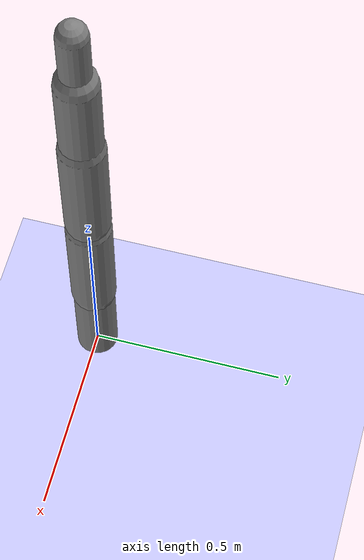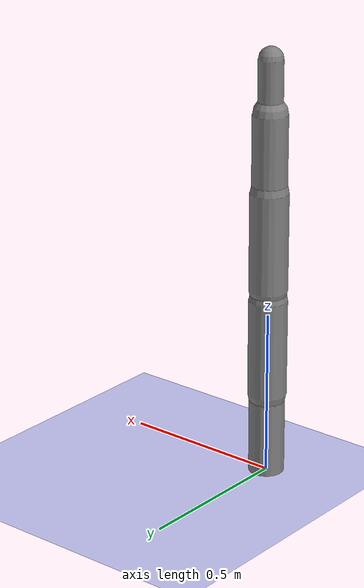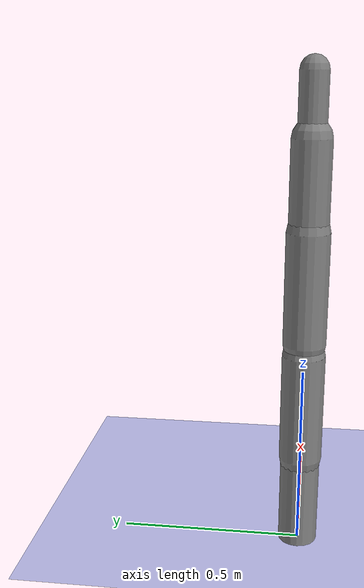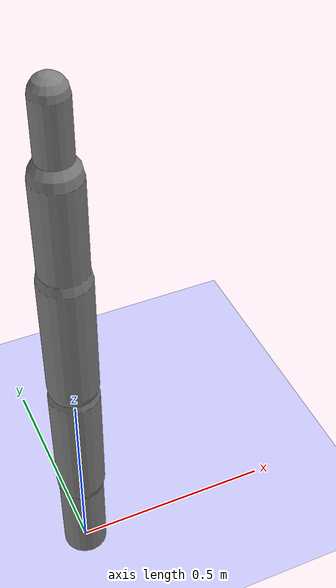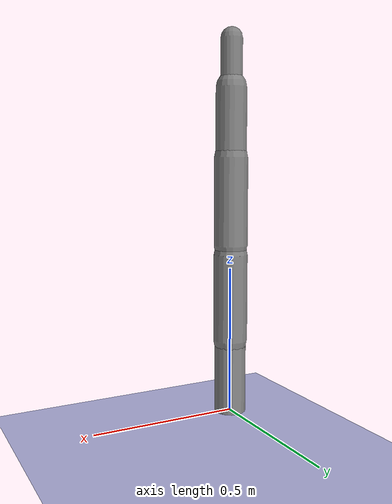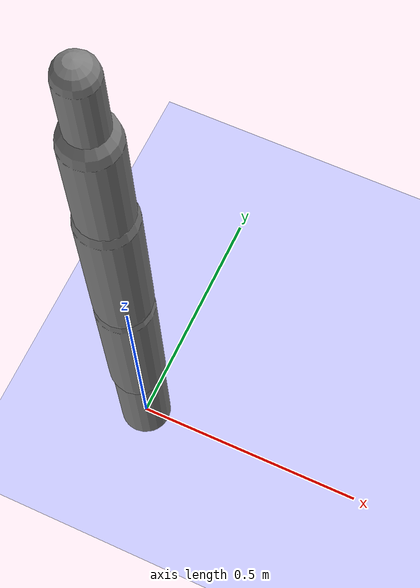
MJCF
<?xml version='1.0' encoding='UTF-8'?>
<mujoco model="robot_model">
  <worldbody>
    <light name="light" pos="0 -3 10" dir="0 0.5 -1" diffuse=".8 .8 .8" specular="0.1 0.1 0.1"/>
    <geom name="floor" type="plane" size="10.0 10.0 0.1" pos="0 0 0" rgba="0.8 0.8 1 1" contype="2" conaffinity="1"/>
    <body name="limb0" pos="0 0 0">
      <geom type="capsule" fromto="0 0 0 0 0 0.5436466289694539" size="0.05373828533547872" density="692.0592022737762" contype="1" conaffinity="2"/>
      <site type="sphere" size="0.01" name="limb0_site0" pos="0 0 0.25101394798134996"/>
      <site type="sphere" size="0.01" name="limb0_site1" pos="0 0 0.4933357024412991"/>
      <freejoint name="limb0_root"/>
      <body name="limb1" pos="0 0 0.25101394798134996">
        <geom type="capsule" fromto="0 0 0 0 0 0.2999583254750588" size="0.058183619747629485" density="740.1828998792604" contype="1" conaffinity="2"/>
        <site type="sphere" size="0.01" name="limb1_site0" pos="0 0 0.07982799083501751"/>
        <body name="limb2" pos="0 0 0.07982799083501751">
          <geom type="capsule" fromto="0 0 0 0 0 0.42075223148732316" size="0.029294916785572153" density="1138.8241278267756" contype="1" conaffinity="2"/>
          <site type="sphere" size="0.01" name="limb2_site0" pos="0 0 0.08379767948799274"/>
          <body name="limb3" pos="0 0 0.08379767948799274">
            <geom type="capsule" fromto="0 0 0 0 0 0.44725352205808966" size="0.03564490912095247" density="1041.1841761778296" contype="1" conaffinity="2"/>
            <joint name="joint_limb2_limb3_0" type="hinge" axis="0 0 1" range="-20.0 20.0" damping="5.0"/>
          </body>
          <joint name="joint_limb1_limb2_0" type="hinge" axis="0 1 0" range="-71.88129173774264 71.88129173774264" damping="5.0"/>
        </body>
        <joint name="joint_limb0_limb1_0" type="hinge" axis="0 1 0" range="-119.50965052353241 119.50965052353241" damping="5.0"/>
      </body>
      <body name="limb4" pos="0 0 0.4933357024412991">
        <geom type="capsule" fromto="0 0 0 0 0 0.36455236532367885" size="0.05326347800263576" density="787.0589167072454" contype="1" conaffinity="2"/>
        <site type="sphere" size="0.01" name="limb4_site0" pos="0 0 0.08810345321438261"/>
        <body name="limb5" pos="0 0 0.08810345321438261">
          <geom type="capsule" fromto="0 0 0 0 0 0.30161425811109044" size="0.05780334581289102" density="656.6616030670481" contype="1" conaffinity="2"/>
          <site type="sphere" size="0.01" name="limb5_site0" pos="0 0 0.29813541192411447"/>
          <site type="sphere" size="0.01" name="limb5_site1" pos="0 0 0.28011732501764747"/>
          <body name="limb6" pos="0 0 0.29813541192411447">
            <geom type="capsule" fromto="0 0 0 0 0 0.2382089942244294" size="0.05271733776593019" density="953.4100928451663" contype="1" conaffinity="2"/>
            <joint name="joint_limb5_limb6_0" type="hinge" axis="1 0 0" range="-110.66857311312557 110.66857311312557" damping="5.0"/>
          </body>
          <body name="limb7" pos="0 0 0.28011732501764747">
            <geom type="capsule" fromto="0 0 0 0 0 0.417857635853817" size="0.0372277515048281" density="596.628065457127" contype="1" conaffinity="2"/>
            <joint name="joint_limb5_limb7_0" type="hinge" axis="1 0 0" range="-99.05414665459517 99.05414665459517" damping="5.0"/>
          </body>
          <joint name="joint_limb4_limb5_0" type="hinge" axis="0 1 0" range="-120.0 120.0" damping="5.0"/>
        </body>
        <joint name="joint_limb0_limb4_0" type="hinge" axis="0 1 0" range="-61.46558493556708 61.46558493556708" damping="5.0"/>
      </body>
    </body>
  </worldbody>
  <actuator>
    <position name="position_actuator_joint_limb0_limb1_0" joint="joint_limb0_limb1_0" gear="1.923415512406648" inheritrange="1" kp="100.0"/>
    <position name="position_actuator_joint_limb1_limb2_0" joint="joint_limb1_limb2_0" gear="1.1538932497909002" inheritrange="1" kp="100.0"/>
    <position name="position_actuator_joint_limb2_limb3_0" joint="joint_limb2_limb3_0" gear="2.0" inheritrange="1" kp="100.0"/>
    <position name="position_actuator_joint_limb0_limb4_0" joint="joint_limb0_limb4_0" gear="1.601725357683094" inheritrange="1" kp="100.0"/>
    <position name="position_actuator_joint_limb4_limb5_0" joint="joint_limb4_limb5_0" gear="0.7587513588861756" inheritrange="1" kp="100.0"/>
    <position name="position_actuator_joint_limb5_limb6_0" joint="joint_limb5_limb6_0" gear="0.5200324229517321" inheritrange="1" kp="100.0"/>
    <position name="position_actuator_joint_limb5_limb7_0" joint="joint_limb5_limb7_0" gear="1.045054370694237" inheritrange="1" kp="100.0"/>
  </actuator>
</mujoco>
